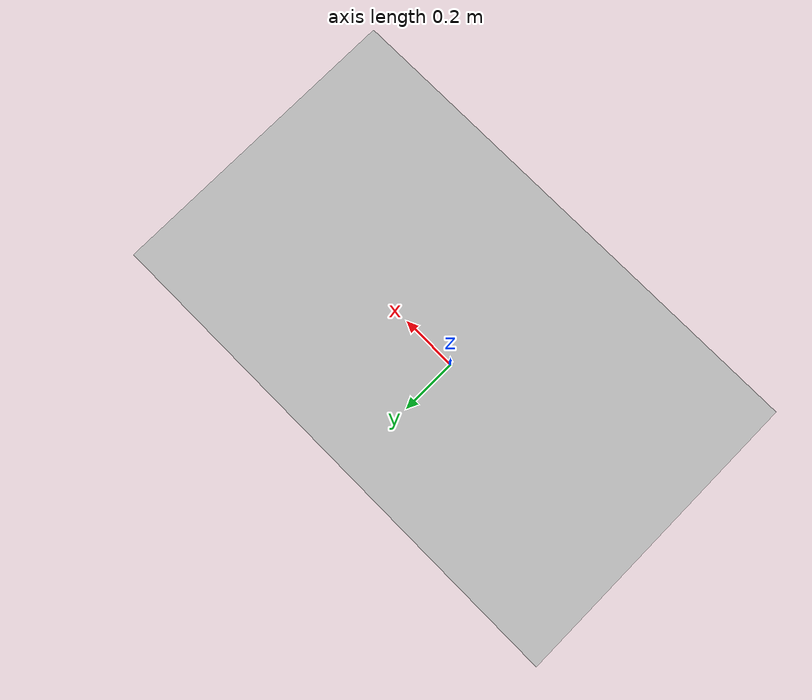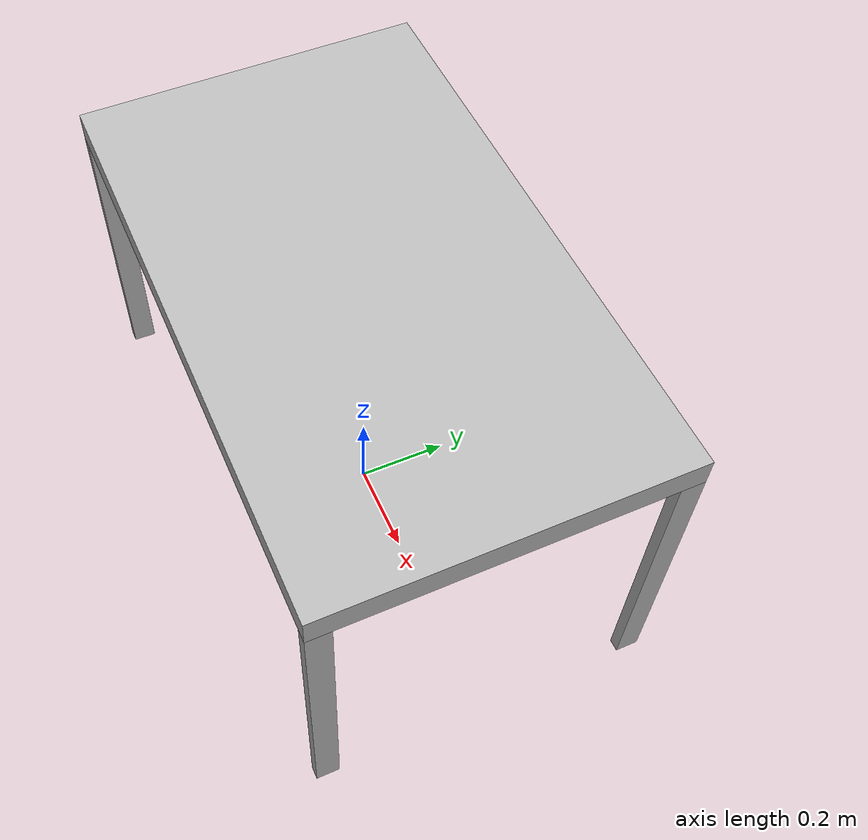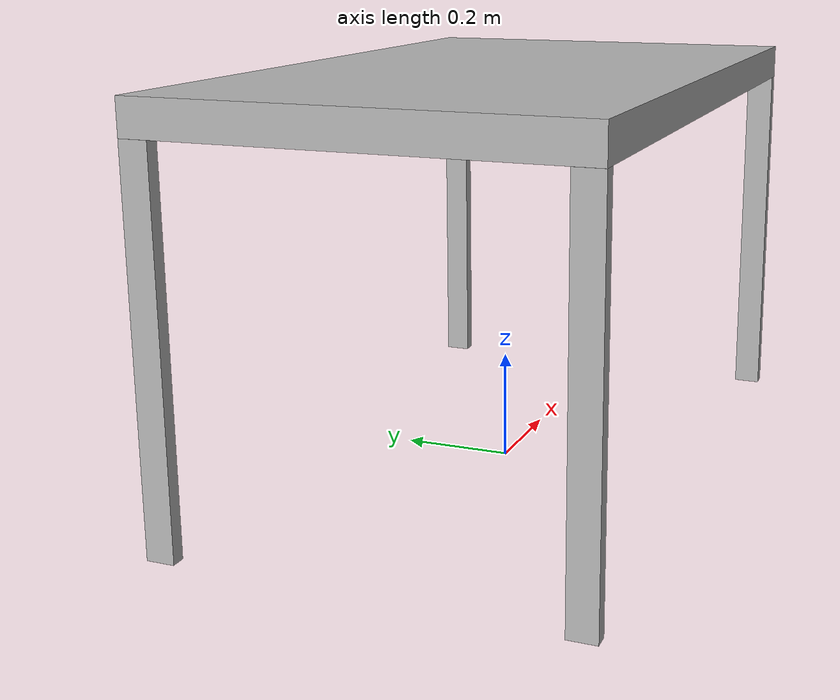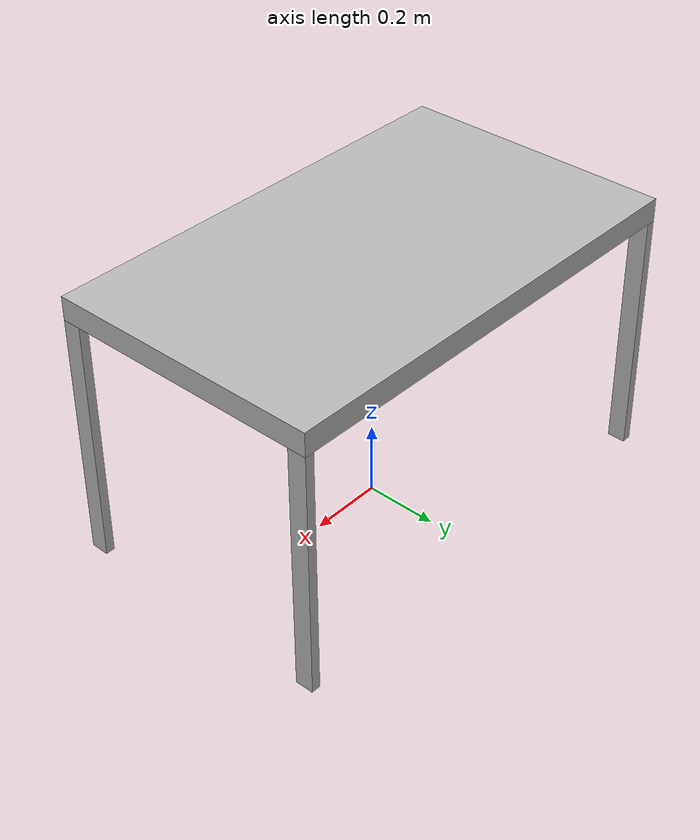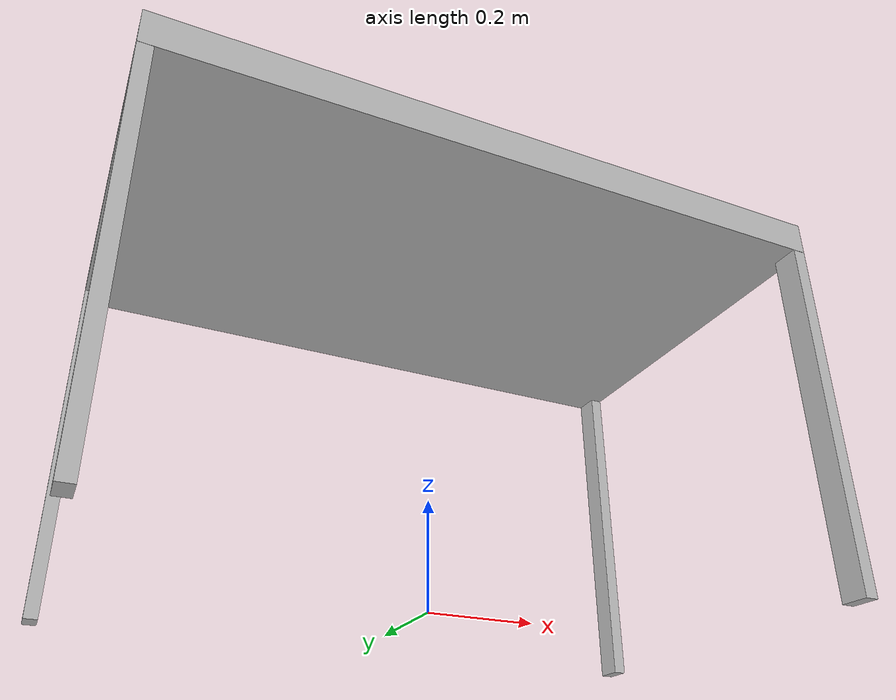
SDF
<?xml version="1.0" ?>
<sdf version="1.6">
  <model name="rwc2022/dinner_table">
    <static>true</static>
    <link name="1_link">
      <collision name="1_col">
        <geometry>
          <box>
            <size>1.25 0.75 0.0635</size>
          </box>
        </geometry>
      </collision>
      <visual name="1_vis">
        <geometry>
          <box>
            <size>1.25 0.75 0.0635</size>
          </box>
        </geometry>
      </visual>
      <pose>0.0 0.0 0.7083 0 0 0</pose>
    </link>
    <link name="2_link">
      <collision name="2_col">
        <geometry>
          <box>
            <size>0.025 0.05 0.6765</size>
          </box>
        </geometry>
      </collision>
      <visual name="2_vis">
        <geometry>
          <box>
            <size>0.025 0.05 0.6765</size>
          </box>
        </geometry>
      </visual>
      <pose>-0.6125 -0.35 0.3382 0 0 0</pose>
    </link>
    <link name="3_link">
      <collision name="3_col">
        <geometry>
          <box>
            <size>0.025 0.05 0.6765</size>
          </box>
        </geometry>
      </collision>
      <visual name="3_vis">
        <geometry>
          <box>
            <size>0.025 0.05 0.6765</size>
          </box>
        </geometry>
      </visual>
      <pose>0.6125 -0.35 0.3382 0 0 0</pose>
    </link>
    <link name="4_link">
      <collision name="4_col">
        <geometry>
          <box>
            <size>0.025 0.05 0.6765</size>
          </box>
        </geometry>
      </collision>
      <visual name="4_vis">
        <geometry>
          <box>
            <size>0.025 0.05 0.6765</size>
          </box>
        </geometry>
      </visual>
      <pose>-0.6125 0.35 0.3382 0 0 0</pose>
    </link>
    <link name="5_link">
      <collision name="5_col">
        <geometry>
          <box>
            <size>0.025 0.05 0.6765</size>
          </box>
        </geometry>
      </collision>
      <visual name="5_vis">
        <geometry>
          <box>
            <size>0.025 0.05 0.6765</size>
          </box>
        </geometry>
      </visual>
      <pose>0.6125 0.35 0.3382 0 0 0</pose>
    </link>
    <link name="on_top_of">
      <virtual_volume name="on_top_of_vv">
        <geometry>
          <box>
            <size>1.23 0.69 0.30</size>
          </box>
        </geometry>
        <pose>0.0 0.0 0.91 0 0 0</pose>
      </virtual_volume>
    </link>
    <link name="in_front_of">
      <virtual_volume name="in_front_of_vv">
        <geometry>
          <box>
            <size>0.3 0.4 0.01</size>
          </box>
        </geometry>
        <pose>1.3 0 0.005 0 0 0</pose>
      </virtual_volume>
    </link>
  </model>
</sdf>
